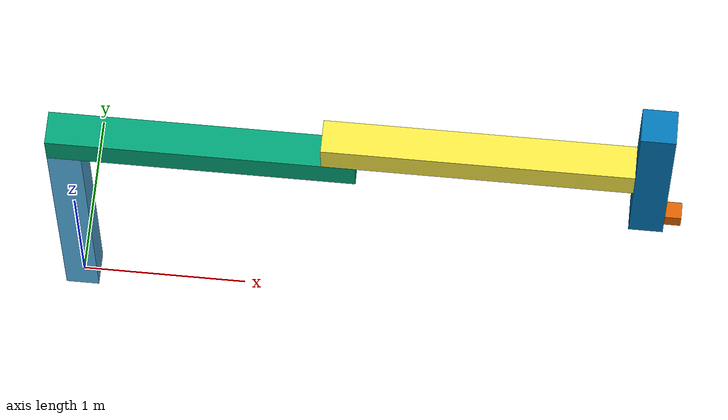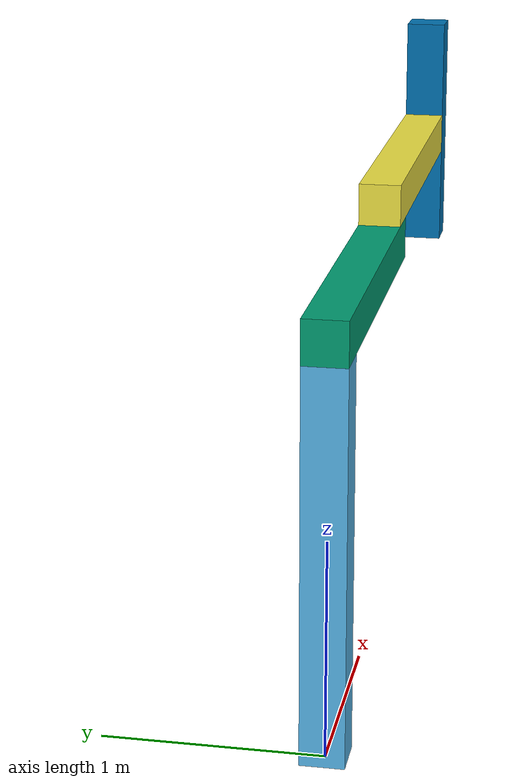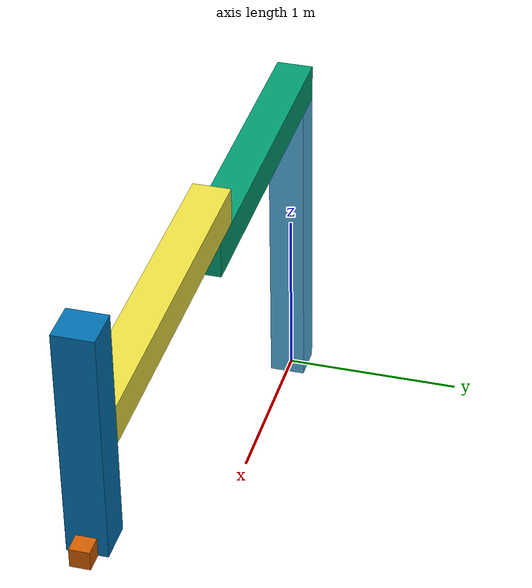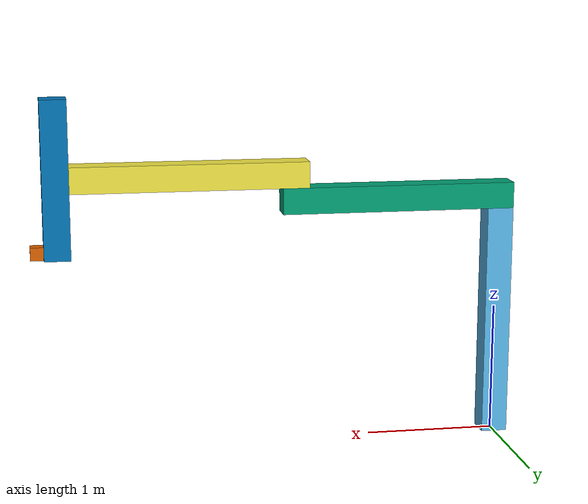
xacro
<?xml version="1.0"?>
<robot xmlns:xacro="http://www.ros.org/wiki/xacro" name="robot_scara">

    <!-- Properties-->
    <xacro:property name="size_box_1" value="0.2 0.2 1.8"/>
	<xacro:property name="size_box_2" value="1.8 0.2 0.2"/>
	<xacro:property name="size_box_3" value="1.8 0.2 0.2"/>
    <xacro:property name="size_box_4" value="0.2 0.2 1.2"/>

    <!--World-->
    <xacro:macro name="base_link" params="">

        <gazebo>
            <plugin name="gazebo_ros_control" filename="libgazebo_ros_control.so">
                <robotNamespace>/robot_scara</robotNamespace>
            </plugin>
        </gazebo>

        <link name="world">
        </link>

        <link name="primer_link">
            <inertial>
                <origin xyz="0 0 0" rpy="0 0 0"/>
                <mass value="0.5" />
                <inertia ixx="1.0" ixy="0.0" ixz="0.0" iyy="1.0" iyz="0.0" izz="1.0"/>
            </inertial>
            <collision>
                <origin xyz="0 0 0" rpy="0 0 0"/>
                <geometry>
                    <box size = "${size_box_1}"/>
                </geometry>
            </collision>
            <visual>
                <origin xyz="0 0 0" rpy="0.0 0 0"/>
                <geometry>
                    <box size = "${size_box_1}"/>
                </geometry>
            </visual>
        </link>

        <gazebo reference="primer_link">
            <kp>100000.0</kp>
            <kd>100000.0</kd>
            <mu1>10.0</mu1>
            <mu2>10.0</mu2>
        </gazebo>

        <joint name="base_joint" type="fixed">
            <parent link="world"/>
            <child link="primer_link"/>
            <origin xyz="0.0 0 0.9" rpy="0 0 0"/>
        </joint>

        <link name="segundo_link">
            <inertial>
                <origin xyz="0.8 0 0.0" rpy="0 0 0"/>
                <mass value="0.2" />
                <inertia ixx="1.0" ixy="0.0" ixz="0.0" iyy="1.0" iyz="0.0" izz="1.0"/>
            </inertial>
            <collision>
                <origin xyz="0.8 0.0 0.0" rpy="0 0 0"/>
                <geometry>
                    <box size = "${size_box_2}"/>
                </geometry>
            </collision>
            <visual>
                <origin xyz="0.8 0.0 0.0" rpy="0.0 0 0"/>
                <geometry>
                    <box size = "${size_box_2}"/>
                </geometry>
            </visual>
        </link>

        <gazebo reference="segundo_link">
            <kp>100000.0</kp>
            <kd>100000.0</kd>
            <mu1>10.0</mu1>
            <mu2>10.0</mu2>
        </gazebo>

        <joint name="segundo_joint" type="revolute">
            <parent link="primer_link"/>
            <child link="segundo_link"/>
            <origin xyz="0.0 0.0 1.0" rpy="0 0 0"/>
            <limit lower="-1.57" upper="1.57" effort="0.1" velocity="0.3"/>
            <axis xyz="0 0 1"/>
        </joint>

        <transmission name="trans1">
            <type>transmission_interface/SimpleTransmission</type>
            <joint name="segundo_joint">
                <hardwareInterface>hardware_interface/EffortJointInterface</hardwareInterface>
            </joint>
            <actuator name="motor1">
                <hardwareInterface>hardware_interface/EffortJointInterface</hardwareInterface>
                <mechanicalReduction>1</mechanicalReduction>
            </actuator>
        </transmission>

        <link name="tercer_link">
            <inertial>
                <origin xyz="0.8 0 0.0" rpy="0 0 0"/>
                <mass value="0.2" />
                <inertia ixx="1.0" ixy="0.0" ixz="0.0" iyy="1.0" iyz="0.0" izz="1.0"/>
            </inertial>
            <collision>
                <origin xyz="0.8 0 0.0" rpy="0 0 0"/>
                <geometry>
                    <box size = "${size_box_3}"/>
                </geometry>
            </collision>
            <visual>
                <origin xyz="0.8 0 0.0" rpy="0.0 0 0"/>
                <geometry>
                    <box size = "${size_box_3}"/>
                </geometry>
            </visual>
        </link>

        <gazebo reference="tercer_link">
            <kp>100000.0</kp>
            <kd>100000.0</kd>
            <mu1>10.0</mu1>
            <mu2>10.0</mu2>
        </gazebo>

        <joint name="tercer_joint" type="revolute">
            <parent link="segundo_link"/>
            <child link="tercer_link"/>
            <origin xyz="1.6 0 0.2      " rpy="0 0 0"/>
            <limit lower="-1.57" upper="1.57" effort="0.1" velocity="0.3"/>
            <axis xyz="0 0 1"/>
        </joint>

        <transmission name="trans2">
            <type>transmission_interface/SimpleTransmission</type>
            <joint name="tercer_joint">
                <hardwareInterface>hardware_interface/EffortJointInterface</hardwareInterface>
            </joint>
            <actuator name="motor2">
                <hardwareInterface>hardware_interface/EffortJointInterface</hardwareInterface>
                <mechanicalReduction>1</mechanicalReduction>
            </actuator>
        </transmission>

        <link name="cuarto_link">
            <inertial>
                <origin xyz="1.8 0 0.0" rpy="0 0 0"/>
                <mass value="0.01" />
                <inertia ixx="1.0" ixy="0.0" ixz="0.0" iyy="1.0" iyz="0.0" izz="1.0"/>
            </inertial>
            <collision>
                <origin xyz="1.8 0 0.0" rpy="0 0 0"/>
                <geometry>
                    <box size = "${size_box_4}"/>
                </geometry>
            </collision>
            <visual>
                <origin xyz="1.8 0 0.0" rpy="0.0 0 0"/>
                <geometry>
                    <box size = "${size_box_4}"/>
                </geometry>
            </visual>
        </link>

        <gazebo reference="cuarto_link">
            <kp>100000.0</kp>
            <kd>100000.0</kd>
            <mu1>10.0</mu1>
            <mu2>10.0</mu2>
        </gazebo>

        <joint name="cuarto_joint" type="prismatic">
            <parent link="tercer_link"/>
            <child link="cuarto_link"/>
            <origin xyz="0.0 0 0.0" rpy="0 0 0"/>
            <limit lower="-0.5" upper="0.50" effort="0.1" velocity="0.3"/>
            <axis xyz="0 0 1"/>
        </joint>
        <transmission name="trans3">
            <type>transmission_interface/SimpleTransmission</type>
            <joint name="cuarto_joint">
                <hardwareInterface>hardware_interface/PositionJointInterface</hardwareInterface>
            </joint>
            <actuator name="motor3">
                <hardwareInterface>hardware_interface/PositionJointInterface</hardwareInterface>
                <mechanicalReduction>1</mechanicalReduction>
            </actuator>
        </transmission>

        <joint name="camera_joint" type="fixed">
            <axis xyz="0 1 0" />
            <origin xyz="1.95 0 -0.55" rpy="0 1.57 0"/>
            <parent link="cuarto_link"/>
            <child link="camera_link"/>
        </joint>

        <link name="camera_link">
            <collision>
                <origin xyz="0 0 0" rpy="0 0 0"/>
                <geometry>
	                <box size="0.1 0.1 0.1"/>
                </geometry>
            </collision>

            <visual>
                <origin xyz="0 0 0" rpy="0 0 0"/>
                <geometry>
	                <box size="0.1 0.1 0.1"/>
                </geometry>
            </visual>

            <inertial>
                <mass value="1e-5" />
                <origin xyz="0 0 0" rpy="0 0 0"/>
                <inertia ixx="1e-6" ixy="0" ixz="0" iyy="1e-6" iyz="0" izz="1e-6" />
            </inertial>
        </link>

        <joint name="camera_optical_joint" type="fixed">
            <origin xyz="0 0 0" rpy="-1.57 0.0 -1.57"/>
            <parent link="camera_link"/>
            <child link="camera_link_optical"/>
        </joint>

        <link name="camera_link_optical">
        </link>
        <gazebo reference="camera_link">
            <sensor type="camera" name="camera1">
                <update_rate>30.0</update_rate>
                <camera name="camera_scara">
                    <horizontal_fov>1.3962634</horizontal_fov>
                    <image>
                        <width>800</width>
                        <height>800</height>
                        <format>R8G8B8</format>
                    </image>
                    <clip>
                        <near>0.02</near>
                        <far>300</far>
                    </clip>
                    <noise>
                        <type>gaussian</type>
                        <mean>0.0</mean>
                        <stddev>0.007</stddev>
                    </noise>
                </camera>
                <plugin name="camera_controller" filename="libgazebo_ros_camera.so">
                    <alwaysOn>true</alwaysOn>
                    <updateRate>0.0</updateRate>
                    <cameraName>robot_scara/camera1</cameraName>
                    <imageTopicName>image_scara</imageTopicName>
                    <cameraInfoTopicName>camera_info</cameraInfoTopicName>
                    <frameName>camera_link_optical</frameName>
                    <hackBaseline>0.0</hackBaseline>
                    <distortionK1>0.0</distortionK1>
                    <distortionK2>0.0</distortionK2>
                    <distortionK3>0.0</distortionK3>
                    <distortionT1>0.0</distortionT1>
                    <distortionT2>0.0</distortionT2>
                    <CxPrime>0</CxPrime>
                    <Cx>0.0</Cx>
                    <Cy>0.0</Cy>
                    <focalLength>0.0</focalLength>
                </plugin>
            </sensor>
        </gazebo>

    </xacro:macro>

    <xacro:base_link />

</robot>
